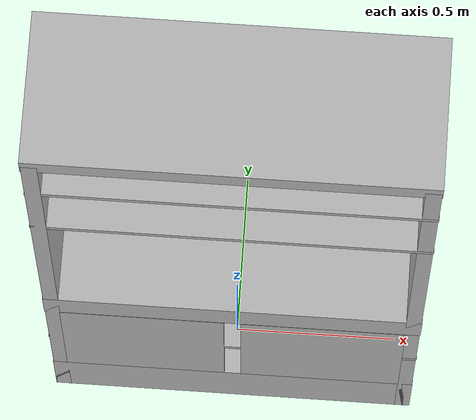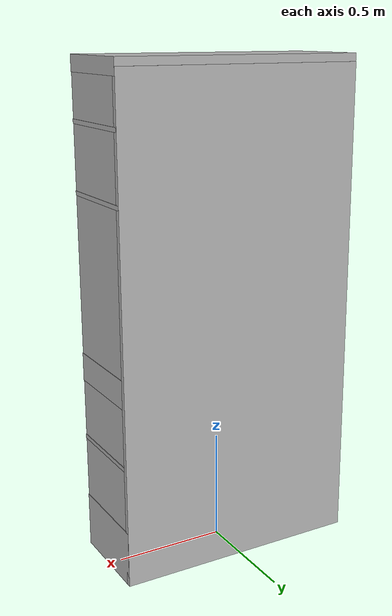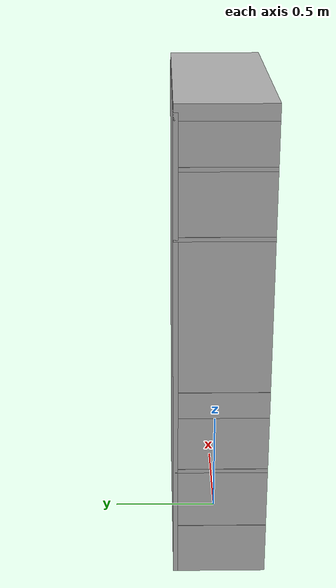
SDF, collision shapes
<?xml version="1.0"?>
<sdf version="1.4">
  <model name="cupboard2">
    <static>false</static>
    <link name="body">
      <inertial>
        <mass>50</mass>
        <inertia>
          <ixx>1</ixx>
          <ixy>0</ixy>
          <ixz>0</ixz>
          <iyy>1</iyy>
          <iyz>0</iyz>
          <izz>0.7</izz>
        </inertia>
      </inertial>
      <visual name="visual">
        <pose>-0.0012 -0.005 0 0 0 0</pose>
        <geometry>
          <mesh>
            <uri>model://cupboard2/meshes/cupboard_body.dae</uri>
          </mesh>
        </geometry>
      </visual>

      <collision name="body_1">
        <pose>0 0 0.126 0 0 0</pose>
        <geometry>
          <box>
            <size>1.1176 0.42545 0.252</size>
          </box>
        </geometry>
      </collision>

      <collision name="body_2">
        <pose>0.53462 0 1.0892183 0 0 0</pose>
        <geometry>
          <box>
            <size>0.04445 0.42545 2.1784366</size>
          </box>
        </geometry>
      </collision>

      <collision name="body_3">
        <pose>-0.53462 0 1.0892183 0 0 0</pose>
        <geometry>
          <box>
            <size>0.04445 0.42545 2.1784366</size>
          </box>
        </geometry>
      </collision>

      <collision name="body_4">
        <pose>0 0.204 1.0892183 0 0 0</pose>
        <geometry>
          <box>
            <size>1.1176 0.0217767 2.1784366</size>
          </box>
        </geometry>
      </collision>

      <collision name="body_5">
        <pose>0 0 0.5436 0 0 0</pose>
        <geometry>
          <box>
            <size>1.1176 0.42545 0.01905</size>
          </box>
        </geometry>
      </collision>

      <collision name="body_6">
        <pose>0 0 1.65 0 0 0</pose>
        <geometry>
          <box>
            <size>1.1176 0.42545 0.01905</size>
          </box>
        </geometry>
      </collision>

      <visual name="visual_body_6">
        <pose>0 0 1.65 0 0 0</pose>
        <geometry>
          <box>
            <size>1.1176 0.42545 0.01905</size>
          </box>
        </geometry>
        <material>
          <script>
            <uri>model://cupboard2/materials/scripts</uri>
            <uri>model://cupboard2/materials/textures</uri>
            <name>Cupboard/Diffuse</name>
          </script>
        </material>
      </visual>

      <collision name="body_7">
        <pose>0 0 1.947 0 0 0</pose>
        <geometry>
          <box>
            <size>1.1176 0.42545 0.01905</size>
          </box>
        </geometry>
      </collision>

      <collision name="body_8">
        <pose>0 0 0.877 0 0 0</pose>
        <geometry>
          <box>
            <size>1.1176 0.42545 0.127</size>
          </box>
        </geometry>
      </collision>

      <collision name="body_9">
        <pose>0 0 2.1784366 0 0 0</pose>
        <geometry>
          <box>
            <size>1.1176 0.42545 0.07</size>
          </box>
        </geometry>
      </collision>
    </link>

    <link name="left_small_door">
      <inertial>
        <mass>1</mass>
        <inertia>
          <ixx>1</ixx>
          <ixy>0</ixy>
          <ixz>0</ixz>
          <iyy>1</iyy>
          <iyz>0</iyz>
          <izz>1</izz>
        </inertia>
      </inertial>
      <pose>0.2698750 -0.2039152 0.2538435 0 0 0</pose>
      <visual name="visual">
        <geometry>
          <mesh>
            <uri>model://cupboard2/meshes/cupboard_small_door.dae</uri>
          </mesh>
        </geometry>
      </visual>

      <collision name="collision">
        <pose>0 0 0.2794 0 0 0</pose>
        <geometry>
          <box>
            <size>0.48895 0.01905 0.5588</size>
          </box>
        </geometry>
      </collision>
    </link>

    <link name="right_small_door">
      <inertial>
        <mass>1</mass>
        <inertia>
          <ixx>1</ixx>
          <ixy>0</ixy>
          <ixz>0</ixz>
          <iyy>1</iyy>
          <iyz>0</iyz>
          <izz>1</izz>
        </inertia>
      </inertial>
      <pose>-0.2698750 -0.2039152 0.2538435 0 0 0</pose>
      <visual name="visual">
        <geometry>
          <mesh>
            <uri>model://cupboard2/meshes/cupboard_small_door.dae</uri>
          </mesh>
        </geometry>
      </visual>

      <collision name="collision">
        <pose>0 0 0.2794 0 0 0</pose>
        <geometry>
          <box>
            <size>0.48895 0.01905 0.5588</size>
          </box>
        </geometry>
      </collision>
    </link>

    <joint type="revolute" name="left_small_door_joint">
      <pose>0.259 0 0 0 0 0</pose>
      <child>left_small_door</child>
      <parent>body</parent>
      <axis>
        <limit>
          <upper>2</upper>
          <lower>0</lower>
        </limit>
        <xyz>0 0 1</xyz>
        <dynamics>
          <damping>10</damping>
        </dynamics>
      </axis>
    </joint>

    <joint type="revolute" name="right_small_door_joint">
      <pose>-0.259 0 0 0 0 0</pose>
      <child>right_small_door</child>
      <parent>body</parent>
      <axis>
        <limit>
          <upper>0</upper>
          <lower>-2</lower>
        </limit>
        <xyz>0 0 1</xyz>
        <dynamics>
          <damping>10</damping>
        </dynamics>
      </axis>
    </joint>

  </model>
</sdf>
